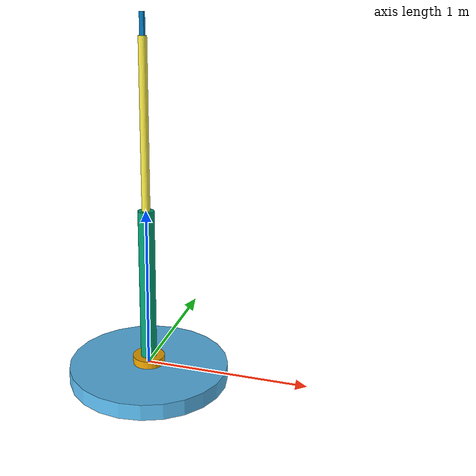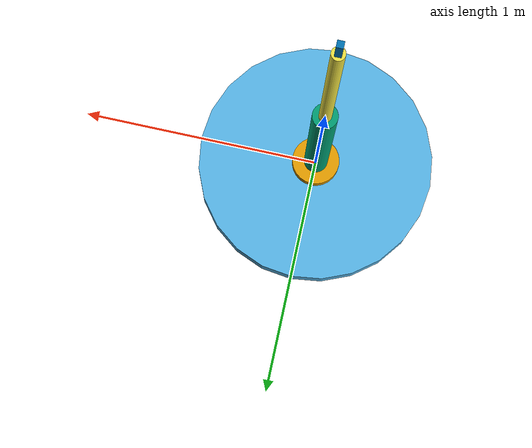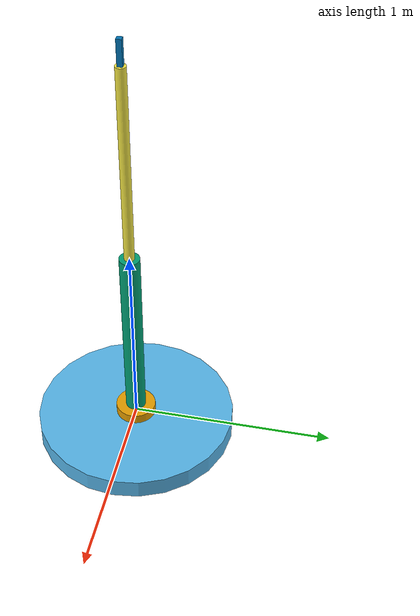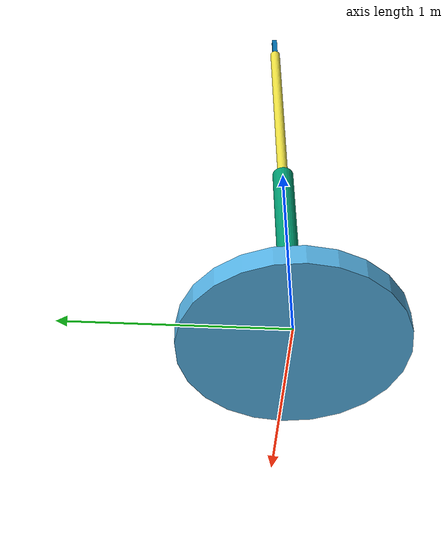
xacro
<?xml version="1.0"?>

<robot xmlns:xacro="http://www.ros.org/wiki/xacro" name="bcr_arm">
<!-- Link definitions -->
  <link name="base">
    <visual>
      <geometry>
        <cylinder length="0.1" radius="0.1"/>
      </geometry>

    </visual>
    <collision>
      <geometry>
        <cylinder length="0.1" radius="0.1"/>
      </geometry>
    </collision>
  </link>
 <link name="base_link">
    <visual>
      <origin xyz="0.0 0.0 -0.05" rpy="0.0 0.0 0.0"/>
      <geometry>
        <cylinder length="0.1" radius="0.5"/>
      </geometry>

    </visual>
    <collision>
      <geometry>
        <cylinder length="0.1" radius="0.1"/>
      </geometry>
    </collision>
  </link>

  <link name="link1">
    <visual>
       <origin xyz="0.0 0.0 0.5" rpy="0.0 0.0 0.0"/>
      <geometry>
        <cylinder length="1.0" radius="0.05"/>
      </geometry>

    </visual>
    <collision>
      <geometry>
        <cylinder length="1.0" radius="0.05"/>
      </geometry>
    </collision>
  </link>

  <link name="link2">
    <visual>
      <origin xyz="0.0 0.0 0.5" rpy="0.0 0.0 0.0"/>
      <geometry>
        <cylinder length="1.0" radius="0.025"/>
      </geometry>
    </visual>
    <collision>
      <geometry>
        <cylinder length="1.0" radius="0.025"/>
      </geometry>
    </collision>
  </link>

  <link name="end_effector">
    <visual>
      <geometry>
        <box size="0.025 0.25 0.025"/>
      </geometry>
    </visual>
    <collision>
      <geometry>
        <sphere radius="0.1"/>
      </geometry>
    </collision>
  </link>

  <!-- Joint definitions -->
  <joint name="joint1" type="revolute">
    <origin xyz="0 0 0" rpy="0 0 0"/>
    <parent link="base"/>
    <child link="link1"/>
    <axis xyz="0 1 0"/>
    <limit lower="-1.57" upper="1.57" effort="100" velocity="0.1"/>
  </joint>
  <joint name="joint" type="revolute">
    <origin xyz="0 0 0.0" rpy="0 0 0"/>
    <parent link="base_link"/>
    <child link="base"/>
    <axis xyz="0 0 1"/>
    <limit lower="-3.14" upper="3.14" effort="100" velocity="0.1"/>
  </joint>

  <joint name="joint2" type="revolute">
    <origin xyz="0 0 1.0" rpy="0 0 0"/>
    <parent link="link1"/>
    <child link="link2"/>
    <axis xyz="0 1 0"/>
    <limit lower="-2.5" upper="2.5" effort="100" velocity="0.1"/>
  </joint>

  <joint name="joint3" type="revolute">
    <origin xyz="0 0 1.0" rpy="1.57 0 1.57"/>
    <parent link="link2"/>
    <child link="end_effector"/>
    <axis xyz="1 0 0"/>
    <limit lower="-2.5" upper="2.5" effort="100" velocity="0.1"/>
  </joint>
</robot>
